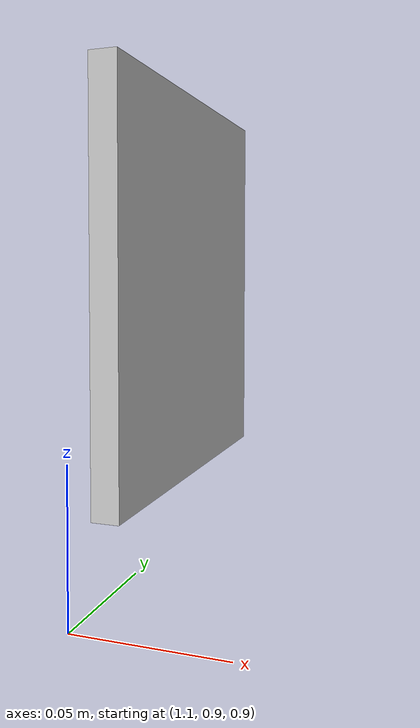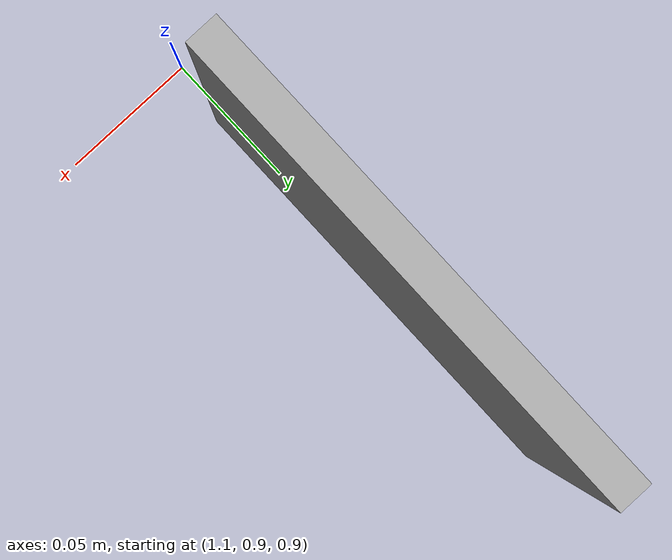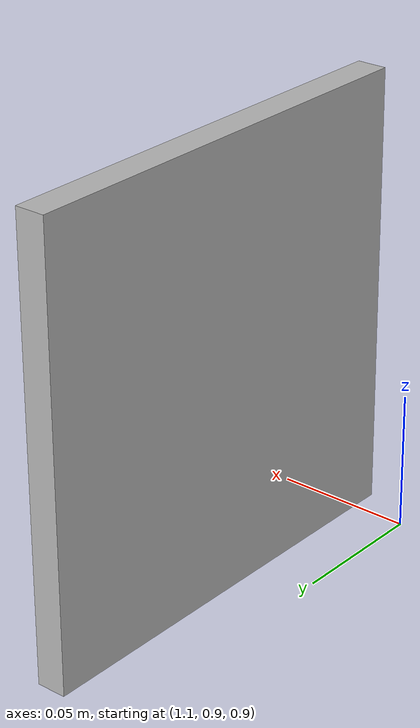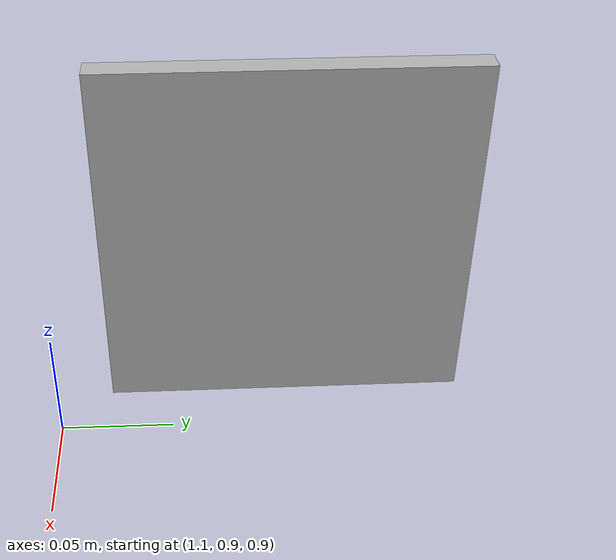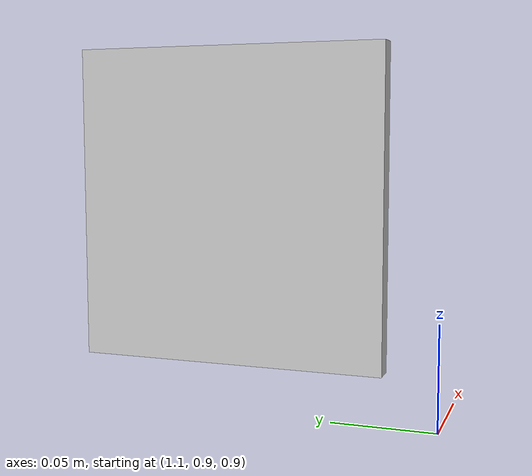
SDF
<?xml version="1.0" encoding="utf-8"?>
<sdf version="1.6">
  <model name="rectangular">
    <static>true</static>
    <pose>1 1 1 0 0 0</pose>
    <link name="box_link">
      <inertial>
        <inertia>
	  <mass>0.01</mass>
          <ixx>0.00001</ixx>
          <ixy>0.0</ixy>
          <ixz>0.0</ixz>
          <iyy>0.00001</iyy>
          <iyz>0.0</iyz>
          <izz>0.00001</izz>
        </inertia>
      </inertial>
      <collision name="collision">
        <geometry>
          <box>
            <size>0.01 0.15 0.01</size>
          </box>
        </geometry>
      </collision>
      <visual name="visual">
        <geometry>
          <box>
            <size>0.01 0.15 0.15</size>
          </box>
        </geometry>
        <material>
          <script>
            <uri>file:///home/iida/ros/jsk_aerial_robot_ws/src/jsk_aerial_robot/robots/beetle/models/sim/doubletag/materials/textures</uri>
          </script>
        </material>
	<pose>0.1 0 0 1.5708 0 0</pose>
      </visual>
    </link>
  </model>
</sdf>
